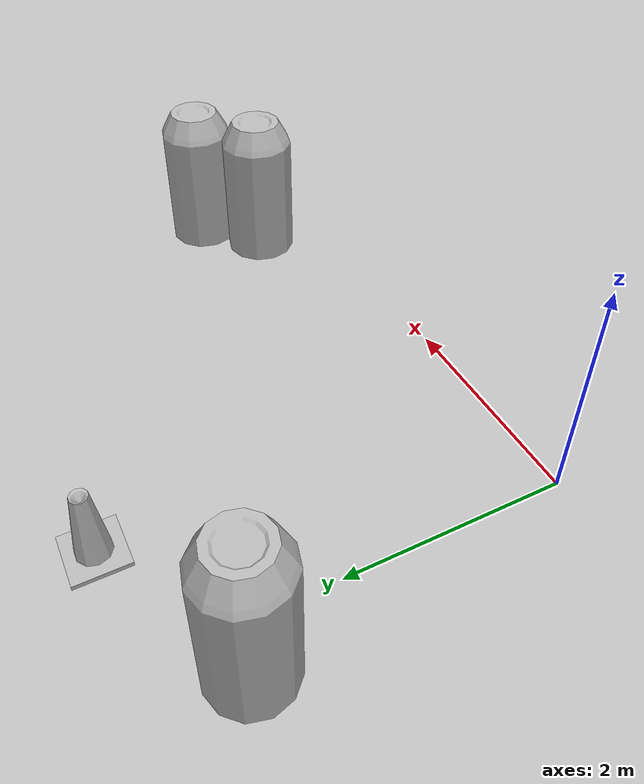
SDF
<sdf version="1.7">
 <world name="default">
  <model name="aws_robomaker_racetrack_CrashworthBucket_01_48">
   <frame name="aws_CrashworthBucket_01::__model__" attached_to="aws_CrashworthBucket_01::body">
    <pose relative_to="__model__">0 0 0 0 -0 0</pose>
   </frame>
   <link name="aws_CrashworthBucket_01::body">
    <pose relative_to="aws_CrashworthBucket_01::__model__">0 0 0 0 -0 0</pose>
    <inertial>
     <mass>5</mass>
     <inertia><ixx>1</ixx><ixy>0</ixy><ixz>0</ixz><iyy>1</iyy><iyz>0</iyz><izz>1</izz></inertia>
    </inertial>
    <visual name="visual">
     <geometry>
      <mesh>
       <uri>file://models/aws_robomaker_racetrack_CrashworthBucket_01/meshes/aws_CrashworthBucket_01_visual.DAE</uri>
      </mesh>
     </geometry>
     <material><shader type="pixel"><normal_map>__default__</normal_map></shader></material>
     <meta><layer>0</layer></meta>
    </visual>
    <collision name="collision_0">
     <geometry>
      <mesh>
       <uri>file://models/aws_robomaker_racetrack_CrashworthBucket_01/meshes/aws_CrashworthBucket_01_collision.DAE</uri>
       <scale>1 1 1</scale>
      </mesh>
     </geometry>
     <surface>
      <friction>
       <ode><mu>1</mu><mu2>1</mu2><fdir1>0 0 0</fdir1><slip1>0</slip1><slip2>0</slip2></ode>
       <torsional>
        <coefficient>1</coefficient>
        <patch_radius>0</patch_radius>
        <surface_radius>0</surface_radius>
        <use_patch_radius>1</use_patch_radius>
        <ode><slip>0</slip></ode>
       </torsional>
      </friction>
      <bounce><restitution_coefficient>0</restitution_coefficient><threshold>1e+06</threshold></bounce>
      <contact>
       <collide_without_contact>0</collide_without_contact>
       <collide_without_contact_bitmask>1</collide_without_contact_bitmask>
       <collide_bitmask>1</collide_bitmask>
       <ode>
        <soft_cfm>0</soft_cfm>
        <soft_erp>0.2</soft_erp>
        <kp>1e+13</kp>
        <kd>1</kd>
        <max_vel>0.01</max_vel>
        <min_depth>0</min_depth>
       </ode>
       <bullet>
        <split_impulse>1</split_impulse>
        <split_impulse_penetration_threshold>-0.01</split_impulse_penetration_threshold>
        <soft_cfm>0</soft_cfm>
        <soft_erp>0.2</soft_erp>
        <kp>1e+13</kp>
        <kd>1</kd>
       </bullet>
      </contact>
     </surface>
    </collision>
   </link>
   <static>1</static>
   <pose>4.78436 1.25544 0 0 0 -0.004687</pose>
  </model>
  <model name="aws_robomaker_racetrack_CrashworthBucket_01_49">
   <frame name="aws_CrashworthBucket_01::__model__" attached_to="aws_CrashworthBucket_01::body">
    <pose relative_to="__model__">0 0 0 0 -0 0</pose>
   </frame>
   <link name="aws_CrashworthBucket_01::body">
    <pose relative_to="aws_CrashworthBucket_01::__model__">0 0 0 0 -0 0</pose>
    <inertial>
     <mass>5</mass>
     <inertia><ixx>1</ixx><ixy>0</ixy><ixz>0</ixz><iyy>1</iyy><iyz>0</iyz><izz>1</izz></inertia>
    </inertial>
    <visual name="visual">
     <geometry>
      <mesh>
       <uri>file://models/aws_robomaker_racetrack_CrashworthBucket_01/meshes/aws_CrashworthBucket_01_visual.DAE</uri>
      </mesh>
     </geometry>
     <material><shader type="pixel"><normal_map>__default__</normal_map></shader></material>
     <meta><layer>0</layer></meta>
    </visual>
    <collision name="collision_0">
     <geometry>
      <mesh>
       <uri>file://models/aws_robomaker_racetrack_CrashworthBucket_01/meshes/aws_CrashworthBucket_01_collision.DAE</uri>
       <scale>1 1 1</scale>
      </mesh>
     </geometry>
     <surface>
      <friction>
       <ode><mu>1</mu><mu2>1</mu2><fdir1>0 0 0</fdir1><slip1>0</slip1><slip2>0</slip2></ode>
       <torsional>
        <coefficient>1</coefficient>
        <patch_radius>0</patch_radius>
        <surface_radius>0</surface_radius>
        <use_patch_radius>1</use_patch_radius>
        <ode><slip>0</slip></ode>
       </torsional>
      </friction>
      <bounce><restitution_coefficient>0</restitution_coefficient><threshold>1e+06</threshold></bounce>
      <contact>
       <collide_without_contact>0</collide_without_contact>
       <collide_without_contact_bitmask>1</collide_without_contact_bitmask>
       <collide_bitmask>1</collide_bitmask>
       <ode>
        <soft_cfm>0</soft_cfm>
        <soft_erp>0.2</soft_erp>
        <kp>1e+13</kp>
        <kd>1</kd>
        <max_vel>0.01</max_vel>
        <min_depth>0</min_depth>
       </ode>
       <bullet>
        <split_impulse>1</split_impulse>
        <split_impulse_penetration_threshold>-0.01</split_impulse_penetration_threshold>
        <soft_cfm>0</soft_cfm>
        <soft_erp>0.2</soft_erp>
        <kp>1e+13</kp>
        <kd>1</kd>
       </bullet>
      </contact>
     </surface>
    </collision>
   </link>
   <static>1</static>
   <pose>4.1948 0.806848 0.054 0 0 -0.002707</pose>
  </model>
  <model name="aws_robomaker_racetrack_CrashworthBucket_01_54">
   <frame name="aws_CrashworthBucket_01::__model__" attached_to="aws_CrashworthBucket_01::body">
    <pose relative_to="__model__">0 0 0 0 -0 0</pose>
   </frame>
   <link name="aws_CrashworthBucket_01::body">
    <pose relative_to="aws_CrashworthBucket_01::__model__">0 0 0 0 -0 0</pose>
    <inertial>
     <mass>5</mass>
     <inertia><ixx>1</ixx><ixy>0</ixy><ixz>0</ixz><iyy>1</iyy><iyz>0</iyz><izz>1</izz></inertia>
    </inertial>
    <visual name="visual">
     <geometry>
      <mesh>
       <uri>file://models/aws_robomaker_racetrack_CrashworthBucket_01/meshes/aws_CrashworthBucket_01_visual.DAE</uri>
      </mesh>
     </geometry>
     <material><shader type="pixel"><normal_map>__default__</normal_map></shader></material>
     <meta><layer>0</layer></meta>
    </visual>
    <collision name="collision_0">
     <geometry>
      <mesh>
       <uri>file://models/aws_robomaker_racetrack_CrashworthBucket_01/meshes/aws_CrashworthBucket_01_collision.DAE</uri>
       <scale>1 1 1</scale>
      </mesh>
     </geometry>
     <surface>
      <friction>
       <ode><mu>1</mu><mu2>1</mu2><fdir1>0 0 0</fdir1><slip1>0</slip1><slip2>0</slip2></ode>
       <torsional>
        <coefficient>1</coefficient>
        <patch_radius>0</patch_radius>
        <surface_radius>0</surface_radius>
        <use_patch_radius>1</use_patch_radius>
        <ode><slip>0</slip></ode>
       </torsional>
      </friction>
      <bounce><restitution_coefficient>0</restitution_coefficient><threshold>1e+06</threshold></bounce>
      <contact>
       <collide_without_contact>0</collide_without_contact>
       <collide_without_contact_bitmask>1</collide_without_contact_bitmask>
       <collide_bitmask>1</collide_bitmask>
       <ode>
        <soft_cfm>0</soft_cfm>
        <soft_erp>0.2</soft_erp>
        <kp>1e+13</kp>
        <kd>1</kd>
        <max_vel>0.01</max_vel>
        <min_depth>0</min_depth>
       </ode>
       <bullet>
        <split_impulse>1</split_impulse>
        <split_impulse_penetration_threshold>-0.01</split_impulse_penetration_threshold>
        <soft_cfm>0</soft_cfm>
        <soft_erp>0.2</soft_erp>
        <kp>1e+13</kp>
        <kd>1</kd>
       </bullet>
      </contact>
     </surface>
    </collision>
   </link>
   <static>1</static>
   <pose>-0.366424 2.88761 0.054 0 -0 0</pose>
  </model>
  <model name="aws_robomaker_racetrack_Track_05_00">
   <frame name="aws_Track_05::__model__" attached_to="aws_Track_05::body">
    <pose relative_to="__model__">0 0 0 0 -0 0</pose>
   </frame>
   <link name="aws_Track_05::body">
    <pose relative_to="aws_Track_05::__model__">0 0 0 0 -0 0</pose>
    <inertial>
     <mass>1000</mass>
     <inertia><ixx>1</ixx><ixy>0</ixy><ixz>0</ixz><iyy>1</iyy><iyz>0</iyz><izz>1</izz></inertia>
    </inertial>
    <visual name="visual">
     <geometry>
      <mesh><uri>file://models/aws_robomaker_racetrack_Track_05/meshes/aws_Track_05_visual.DAE</uri></mesh>
     </geometry>
     <material><shader type="pixel"><normal_map>__default__</normal_map></shader></material>
     <meta><layer>0</layer></meta>
    </visual>
    <collision name="collision_0">
     <geometry>
      <mesh>
       <uri>file://models/aws_robomaker_racetrack_Track_05/meshes/aws_Track_05_collision.DAE</uri>
       <scale>1 1 1</scale>
      </mesh>
     </geometry>
     <surface>
      <friction>
       <ode><mu>100</mu><mu2>50</mu2><fdir1>0 0 0</fdir1><slip1>0</slip1><slip2>0</slip2></ode>
       <torsional>
        <coefficient>1</coefficient>
        <patch_radius>0</patch_radius>
        <surface_radius>0</surface_radius>
        <use_patch_radius>1</use_patch_radius>
        <ode><slip>0</slip></ode>
       </torsional>
      </friction>
      <bounce><restitution_coefficient>0</restitution_coefficient><threshold>1e+06</threshold></bounce>
      <contact>
       <collide_without_contact>0</collide_without_contact>
       <collide_without_contact_bitmask>1</collide_without_contact_bitmask>
       <collide_bitmask>1</collide_bitmask>
       <ode>
        <soft_cfm>0</soft_cfm>
        <soft_erp>0.2</soft_erp>
        <kp>1e+13</kp>
        <kd>1</kd>
        <max_vel>0.01</max_vel>
        <min_depth>0</min_depth>
       </ode>
       <bullet>
        <split_impulse>1</split_impulse>
        <split_impulse_penetration_threshold>-0.01</split_impulse_penetration_threshold>
        <soft_cfm>0</soft_cfm>
        <soft_erp>0.2</soft_erp>
        <kp>1e+13</kp>
        <kd>1</kd>
       </bullet>
      </contact>
     </surface>
    </collision>
   </link>
   <static>1</static>
   <pose>0 0 0.051 0 -0 0</pose>
  </model>
  <model name="aws_robomaker_racetrack_TrafficCone_01_02">
   <frame name="aws_TrafficCone_01::__model__" attached_to="aws_TrafficCone_01::body">
    <pose relative_to="__model__">0 0 0 0 -0 0</pose>
   </frame>
   <link name="aws_TrafficCone_01::body">
    <pose relative_to="aws_TrafficCone_01::__model__">0 0 0 0 -0 0</pose>
    <inertial>
     <mass>0.5</mass>
     <inertia><ixx>1</ixx><ixy>0</ixy><ixz>0</ixz><iyy>1</iyy><iyz>0</iyz><izz>1</izz></inertia>
    </inertial>
    <visual name="visual">
     <geometry>
      <mesh>
       <uri>file://models/aws_robomaker_racetrack_TrafficCone_01/meshes/aws_TrafficCone_01_visual.DAE</uri>
      </mesh>
     </geometry>
     <material><shader type="pixel"><normal_map>__default__</normal_map></shader></material>
     <meta><layer>0</layer></meta>
    </visual>
    <collision name="collision_0">
     <geometry>
      <mesh>
       <uri>file://models/aws_robomaker_racetrack_TrafficCone_01/meshes/aws_TrafficCone_01_coliision.DAE</uri>
       <scale>1 1 1</scale>
      </mesh>
     </geometry>
     <surface>
      <friction>
       <ode><mu>1</mu><mu2>1</mu2><fdir1>0 0 0</fdir1><slip1>0</slip1><slip2>0</slip2></ode>
       <torsional>
        <coefficient>1</coefficient>
        <patch_radius>0</patch_radius>
        <surface_radius>0</surface_radius>
        <use_patch_radius>1</use_patch_radius>
        <ode><slip>0</slip></ode>
       </torsional>
      </friction>
      <bounce><restitution_coefficient>0</restitution_coefficient><threshold>1e+06</threshold></bounce>
      <contact>
       <collide_without_contact>0</collide_without_contact>
       <collide_without_contact_bitmask>1</collide_without_contact_bitmask>
       <collide_bitmask>1</collide_bitmask>
       <ode>
        <soft_cfm>0</soft_cfm>
        <soft_erp>0.2</soft_erp>
        <kp>1e+13</kp>
        <kd>1</kd>
        <max_vel>0.01</max_vel>
        <min_depth>0</min_depth>
       </ode>
       <bullet>
        <split_impulse>1</split_impulse>
        <split_impulse_penetration_threshold>-0.01</split_impulse_penetration_threshold>
        <soft_cfm>0</soft_cfm>
        <soft_erp>0.2</soft_erp>
        <kp>1e+13</kp>
        <kd>1</kd>
       </bullet>
      </contact>
     </surface>
    </collision>
   </link>
   <static>1</static>
   <pose>1.05198 3.57817 0 0 -0 0</pose>
  </model>
  <model name="ground_plane">
   <pose>0 0 -6.83581e+06 0 -0 0</pose>
   <link name="link">
    <pose>0 0 -1 0 -0 0</pose>
    <inertial>
     <inertia><ixx>1</ixx><ixy>0</ixy><ixz>0</ixz><iyy>1</iyy><iyz>0</iyz><izz>1</izz></inertia>
     <mass>1</mass>
    </inertial>
    <velocity>0 0 0 0 -0 0</velocity>
    <acceleration>0 0 0 0 -0 0</acceleration>
   </link>
   <scale>1 1 1</scale>
  </model>
 </world>
</sdf>
